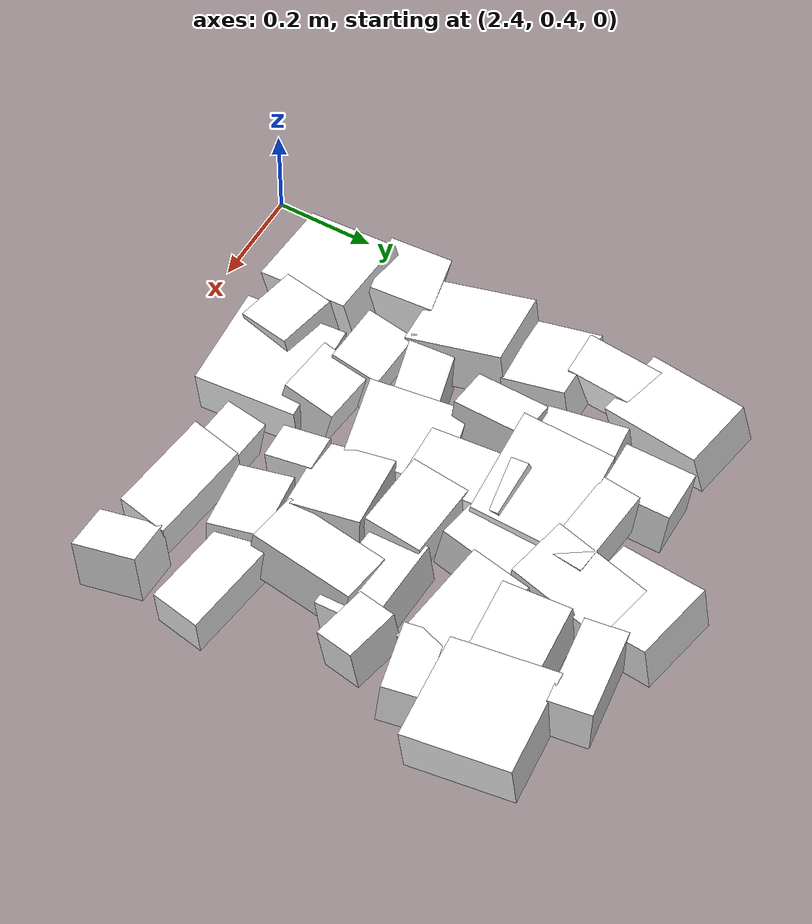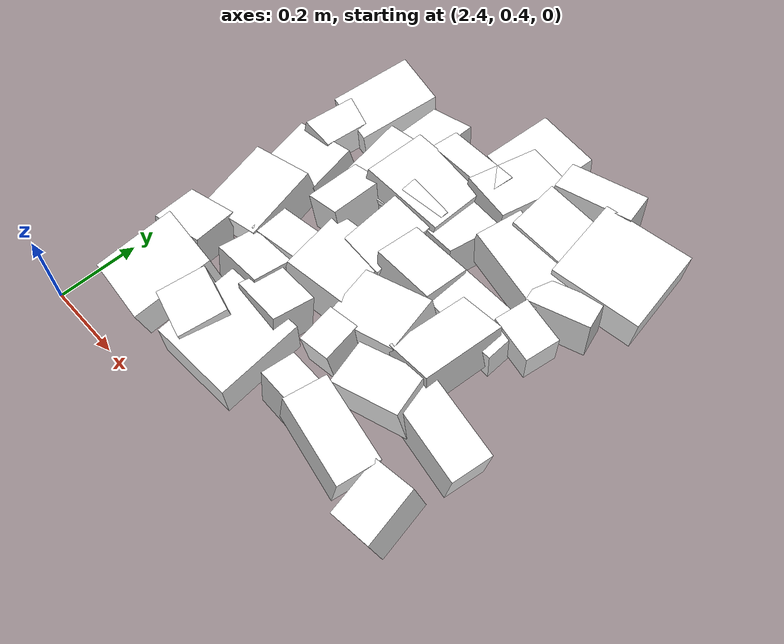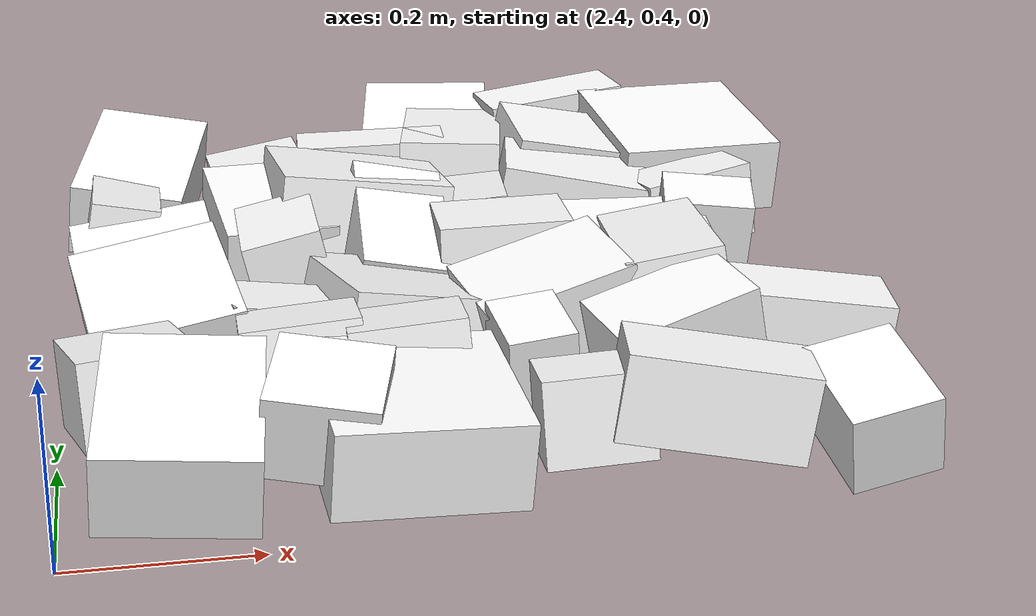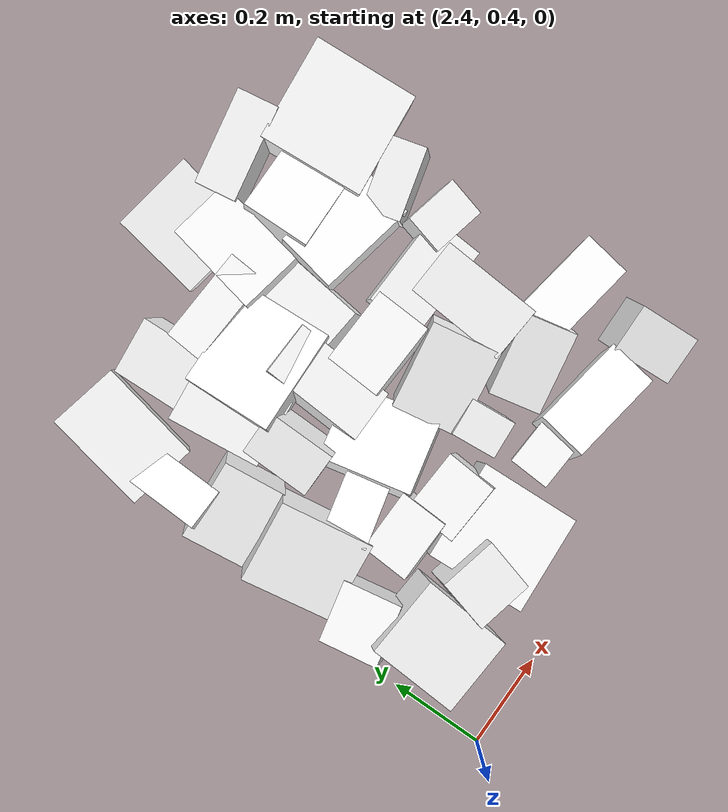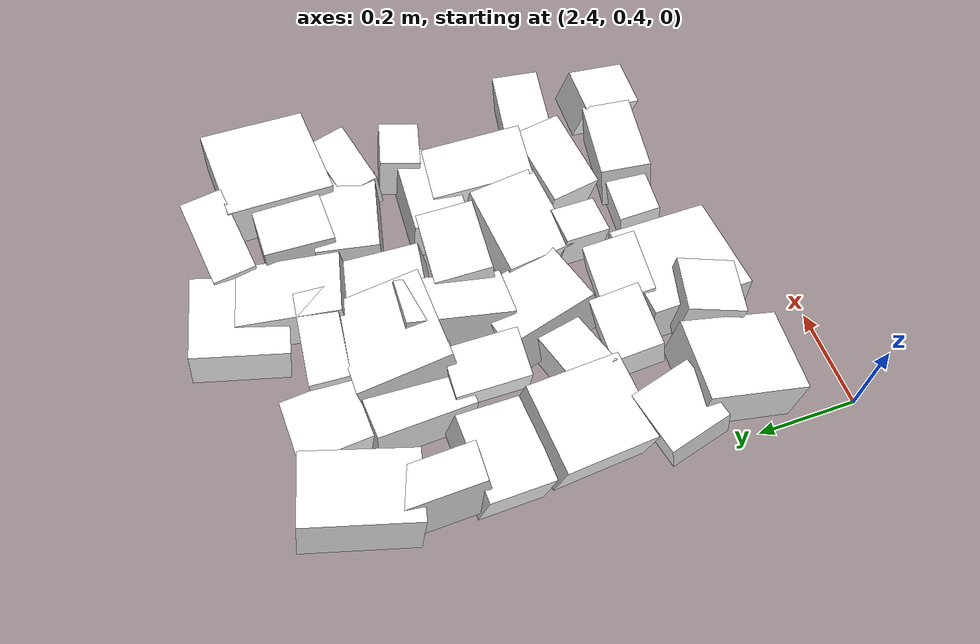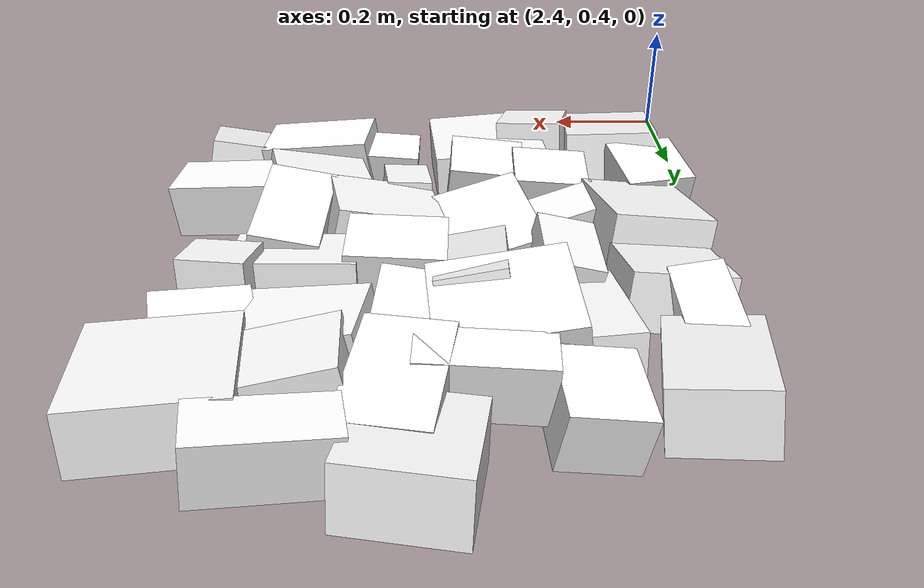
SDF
<sdf version="1.7">
 <world name="default">
  <include><uri>model://sun</uri></include>
  <model name="static_environment">
   <static>true</static>
   <link name="region_410">
    <pose>2.5264982627403807 0.5967376232046375 0.03349788162178775 0.21216534981599583 0.05971173338387331 -0.08870713364559307</pose>
    <collision name="region_410_collision">
     <geometry><box><size>0.1706078242711454 0.20436977434464226 0.1</size></box></geometry>
     <surface><friction><ode><mu>1.0</mu><mu2>1.0</mu2></ode></friction></surface>
    </collision>
    <visual name="region_410_visual">
     <geometry><box><size>0.1706078242711454 0.20436977434464226 0.1</size></box></geometry>
     <material><ambient>1.0 1.0 1.0 1.0</ambient><diffuse>1.0 1.0 1.0 1.0</diffuse></material>
    </visual>
   </link>
   <link name="region_411">
    <pose>2.677445045424345 0.5943575005775785 0.04732779111814016 0.1785952794159718 0.0944638330162288 -0.2483560156238302</pose>
    <collision name="region_411_collision">
     <geometry><box><size>0.12292144664003718 0.11871850275099793 0.1</size></box></geometry>
     <surface><friction><ode><mu>1.0</mu><mu2>1.0</mu2></ode></friction></surface>
    </collision>
    <visual name="region_411_visual">
     <geometry><box><size>0.12292144664003718 0.11871850275099793 0.1</size></box></geometry>
     <material><ambient>1.0 1.0 1.0 1.0</ambient><diffuse>1.0 1.0 1.0 1.0</diffuse></material>
    </visual>
   </link>
   <link name="region_412">
    <pose>2.770354561352111 0.6085755689061507 0.01926084901215371 0.04787094714345319 0.05540352775220464 0.04980959419866887</pose>
    <collision name="region_412_collision">
     <geometry><box><size>0.2100155249485474 0.2129797306443485 0.1</size></box></geometry>
     <surface><friction><ode><mu>1.0</mu><mu2>1.0</mu2></ode></friction></surface>
    </collision>
    <visual name="region_412_visual">
     <geometry><box><size>0.2100155249485474 0.2129797306443485 0.1</size></box></geometry>
     <material><ambient>1.0 1.0 1.0 1.0</ambient><diffuse>1.0 1.0 1.0 1.0</diffuse></material>
    </visual>
   </link>
   <link name="region_413">
    <pose>2.9680440540529336 0.6246860430079991 0.009733731452126854 -0.14469618057355804 -0.061279608819677645 -0.04857639491366328</pose>
    <collision name="region_413_collision">
     <geometry><box><size>0.12184259952648774 0.0854810512144632 0.1</size></box></geometry>
     <surface><friction><ode><mu>1.0</mu><mu2>1.0</mu2></ode></friction></surface>
    </collision>
    <visual name="region_413_visual">
     <geometry><box><size>0.12184259952648774 0.0854810512144632 0.1</size></box></geometry>
     <material><ambient>1.0 1.0 1.0 1.0</ambient><diffuse>1.0 1.0 1.0 1.0</diffuse></material>
    </visual>
   </link>
   <link name="region_414">
    <pose>3.095140889649027 0.6088775504003556 0.025582147639666555 -0.08308375724269845 0.13923671692967232 -0.1822824327161946</pose>
    <collision name="region_414_collision">
     <geometry><box><size>0.20777665416491922 0.10532315150551087 0.1</size></box></geometry>
     <surface><friction><ode><mu>1.0</mu><mu2>1.0</mu2></ode></friction></surface>
    </collision>
    <visual name="region_414_visual">
     <geometry><box><size>0.20777665416491922 0.10532315150551087 0.1</size></box></geometry>
     <material><ambient>1.0 1.0 1.0 1.0</ambient><diffuse>1.0 1.0 1.0 1.0</diffuse></material>
    </visual>
   </link>
   <link name="region_415">
    <pose>3.267210667914866 0.5852284916356614 0.005474271066575942 0.21533800719094315 -0.1868063581127013 0.0525026951817818</pose>
    <collision name="region_415_collision">
     <geometry><box><size>0.10375661583833336 0.1353883721843947 0.1</size></box></geometry>
     <surface><friction><ode><mu>1.0</mu><mu2>1.0</mu2></ode></friction></surface>
    </collision>
    <visual name="region_415_visual">
     <geometry><box><size>0.10375661583833336 0.1353883721843947 0.1</size></box></geometry>
     <material><ambient>1.0 1.0 1.0 1.0</ambient><diffuse>1.0 1.0 1.0 1.0</diffuse></material>
    </visual>
   </link>
   <link name="region_430">
    <pose>2.476385479812782 0.7311687372045597 0.025962440238234685 -0.19368886047820688 -0.008037205267920233 0.21574418850218124</pose>
    <collision name="region_430_collision">
     <geometry><box><size>0.12956067281717265 0.12503417433243483 0.1</size></box></geometry>
     <surface><friction><ode><mu>1.0</mu><mu2>1.0</mu2></ode></friction></surface>
    </collision>
    <visual name="region_430_visual">
     <geometry><box><size>0.12956067281717265 0.12503417433243483 0.1</size></box></geometry>
     <material><ambient>1.0 1.0 1.0 1.0</ambient><diffuse>1.0 1.0 1.0 1.0</diffuse></material>
    </visual>
   </link>
   <link name="region_431">
    <pose>2.6683295224171664 0.7596441277194645 0.030671755726946134 -0.18805892253738415 -0.0742292266154223 -0.013450099195137066</pose>
    <collision name="region_431_collision">
     <geometry><box><size>0.134828279164239 0.10205879768003219 0.1</size></box></geometry>
     <surface><friction><ode><mu>1.0</mu><mu2>1.0</mu2></ode></friction></surface>
    </collision>
    <visual name="region_431_visual">
     <geometry><box><size>0.134828279164239 0.10205879768003219 0.1</size></box></geometry>
     <material><ambient>1.0 1.0 1.0 1.0</ambient><diffuse>1.0 1.0 1.0 1.0</diffuse></material>
    </visual>
   </link>
   <link name="region_432">
    <pose>2.7836128173711705 0.7285696886971609 0.03647125605842567 -0.18849419529501205 -0.09011101296383955 -0.05417018967351489</pose>
    <collision name="region_432_collision">
     <geometry><box><size>0.13175779509372743 0.10828854993342196 0.1</size></box></geometry>
     <surface><friction><ode><mu>1.0</mu><mu2>1.0</mu2></ode></friction></surface>
    </collision>
    <visual name="region_432_visual">
     <geometry><box><size>0.13175779509372743 0.10828854993342196 0.1</size></box></geometry>
     <material><ambient>1.0 1.0 1.0 1.0</ambient><diffuse>1.0 1.0 1.0 1.0</diffuse></material>
    </visual>
   </link>
   <link name="region_433">
    <pose>2.930238940373016 0.7662187323337086 0.011959927052116981 0.12358504361697314 -0.07625290767795234 0.08060668410004262</pose>
    <collision name="region_433_collision">
     <geometry><box><size>0.08069118291779179 0.09825169303578776 0.1</size></box></geometry>
     <surface><friction><ode><mu>1.0</mu><mu2>1.0</mu2></ode></friction></surface>
    </collision>
    <visual name="region_433_visual">
     <geometry><box><size>0.08069118291779179 0.09825169303578776 0.1</size></box></geometry>
     <material><ambient>1.0 1.0 1.0 1.0</ambient><diffuse>1.0 1.0 1.0 1.0</diffuse></material>
    </visual>
   </link>
   <link name="region_434">
    <pose>3.0952584862004944 0.7605926109329969 0.030267264312795385 0.05434025327083025 -0.23025828911216734 0.20271797738747932</pose>
    <collision name="region_434_collision">
     <geometry><box><size>0.17318309997485784 0.10994639143384492 0.1</size></box></geometry>
     <surface><friction><ode><mu>1.0</mu><mu2>1.0</mu2></ode></friction></surface>
    </collision>
    <visual name="region_434_visual">
     <geometry><box><size>0.17318309997485784 0.10994639143384492 0.1</size></box></geometry>
     <material><ambient>1.0 1.0 1.0 1.0</ambient><diffuse>1.0 1.0 1.0 1.0</diffuse></material>
    </visual>
   </link>
   <link name="region_435">
    <pose>3.2432742116954474 0.7744580756489334 0.022606577508670928 -0.03335343160421389 0.10480613468346567 -0.1695489310743737</pose>
    <collision name="region_435_collision">
     <geometry><box><size>0.20835845713492265 0.10180219240691474 0.1</size></box></geometry>
     <surface><friction><ode><mu>1.0</mu><mu2>1.0</mu2></ode></friction></surface>
    </collision>
    <visual name="region_435_visual">
     <geometry><box><size>0.20835845713492265 0.10180219240691474 0.1</size></box></geometry>
     <material><ambient>1.0 1.0 1.0 1.0</ambient><diffuse>1.0 1.0 1.0 1.0</diffuse></material>
    </visual>
   </link>
   <link name="region_450">
    <pose>2.518960501932802 0.9036217532314061 0.02798448186844531 0.17900631935587558 -0.14723269115528503 0.10787045830242953</pose>
    <collision name="region_450_collision">
     <geometry><box><size>0.17586759001589866 0.19882283950283314 0.1</size></box></geometry>
     <surface><friction><ode><mu>1.0</mu><mu2>1.0</mu2></ode></friction></surface>
    </collision>
    <visual name="region_450_visual">
     <geometry><box><size>0.17586759001589866 0.19882283950283314 0.1</size></box></geometry>
     <material><ambient>1.0 1.0 1.0 1.0</ambient><diffuse>1.0 1.0 1.0 1.0</diffuse></material>
    </visual>
   </link>
   <link name="region_451">
    <pose>2.67092032971365 0.8775133360855353 0.002685717633342183 -0.01468467100861881 0.21937532283309652 0.22376915592995977</pose>
    <collision name="region_451_collision">
     <geometry><box><size>0.19738073139330983 0.09289147850770733 0.1</size></box></geometry>
     <surface><friction><ode><mu>1.0</mu><mu2>1.0</mu2></ode></friction></surface>
    </collision>
    <visual name="region_451_visual">
     <geometry><box><size>0.19738073139330983 0.09289147850770733 0.1</size></box></geometry>
     <material><ambient>1.0 1.0 1.0 1.0</ambient><diffuse>1.0 1.0 1.0 1.0</diffuse></material>
    </visual>
   </link>
   <link name="region_452">
    <pose>2.7850752742954175 0.9084678939354055 0.008289017887861062 -0.12333865203501837 0.21567775039032122 0.19866580151415425</pose>
    <collision name="region_452_collision">
     <geometry><box><size>0.16301595016087692 0.19697033880860118 0.1</size></box></geometry>
     <surface><friction><ode><mu>1.0</mu><mu2>1.0</mu2></ode></friction></surface>
    </collision>
    <visual name="region_452_visual">
     <geometry><box><size>0.16301595016087692 0.19697033880860118 0.1</size></box></geometry>
     <material><ambient>1.0 1.0 1.0 1.0</ambient><diffuse>1.0 1.0 1.0 1.0</diffuse></material>
    </visual>
   </link>
   <link name="region_453">
    <pose>2.9728330181096663 0.880241928223291 0.025393386301229493 0.049590323640137546 -0.23137801791927143 0.1577691326943617</pose>
    <collision name="region_453_collision">
     <geometry><box><size>0.18643594893411278 0.1460255045102985 0.1</size></box></geometry>
     <surface><friction><ode><mu>1.0</mu><mu2>1.0</mu2></ode></friction></surface>
    </collision>
    <visual name="region_453_visual">
     <geometry><box><size>0.18643594893411278 0.1460255045102985 0.1</size></box></geometry>
     <material><ambient>1.0 1.0 1.0 1.0</ambient><diffuse>1.0 1.0 1.0 1.0</diffuse></material>
    </visual>
   </link>
   <link name="region_454">
    <pose>3.1259824744794438 0.9172690502704679 0.041345515581136416 -0.09846852410530516 -0.1707248822704766 -0.06677514521933614</pose>
    <collision name="region_454_collision">
     <geometry><box><size>0.11723854043931331 0.21379516396226508 0.1</size></box></geometry>
     <surface><friction><ode><mu>1.0</mu><mu2>1.0</mu2></ode></friction></surface>
    </collision>
    <visual name="region_454_visual">
     <geometry><box><size>0.11723854043931331 0.21379516396226508 0.1</size></box></geometry>
     <material><ambient>1.0 1.0 1.0 1.0</ambient><diffuse>1.0 1.0 1.0 1.0</diffuse></material>
    </visual>
   </link>
   <link name="region_470">
    <pose>2.5086676997738477 1.0756493582404818 0.011339527356987561 0.19851755597599008 -0.12249757079299978 0.06091801628416055</pose>
    <collision name="region_470_collision">
     <geometry><box><size>0.17199956367881825 0.13466124031310217 0.1</size></box></geometry>
     <surface><friction><ode><mu>1.0</mu><mu2>1.0</mu2></ode></friction></surface>
    </collision>
    <visual name="region_470_visual">
     <geometry><box><size>0.17199956367881825 0.13466124031310217 0.1</size></box></geometry>
     <material><ambient>1.0 1.0 1.0 1.0</ambient><diffuse>1.0 1.0 1.0 1.0</diffuse></material>
    </visual>
   </link>
   <link name="region_471">
    <pose>2.6768662697949965 1.047043494849821 0.03642183200974957 -0.011167872114045019 -0.22162480456825373 -0.009796874194892058</pose>
    <collision name="region_471_collision">
     <geometry><box><size>0.09718251830032122 0.14906649547310374 0.1</size></box></geometry>
     <surface><friction><ode><mu>1.0</mu><mu2>1.0</mu2></ode></friction></surface>
    </collision>
    <visual name="region_471_visual">
     <geometry><box><size>0.09718251830032122 0.14906649547310374 0.1</size></box></geometry>
     <material><ambient>1.0 1.0 1.0 1.0</ambient><diffuse>1.0 1.0 1.0 1.0</diffuse></material>
    </visual>
   </link>
   <link name="region_472">
    <pose>2.817264220335275 1.0730547976616376 0.02893955183684023 0.23951214188447767 0.19850751868958688 -0.019008481146175926</pose>
    <collision name="region_472_collision">
     <geometry><box><size>0.11461537412358669 0.22075162058865685 0.1</size></box></geometry>
     <surface><friction><ode><mu>1.0</mu><mu2>1.0</mu2></ode></friction></surface>
    </collision>
    <visual name="region_472_visual">
     <geometry><box><size>0.11461537412358669 0.22075162058865685 0.1</size></box></geometry>
     <material><ambient>1.0 1.0 1.0 1.0</ambient><diffuse>1.0 1.0 1.0 1.0</diffuse></material>
    </visual>
   </link>
   <link name="region_473">
    <pose>2.9451690341348984 1.0228297597881912 0.036295745139574155 -0.07839194552425655 -0.030481082231647083 -0.051092367105398384</pose>
    <collision name="region_473_collision">
     <geometry><box><size>0.16425957500197325 0.11947550413600536 0.1</size></box></geometry>
     <surface><friction><ode><mu>1.0</mu><mu2>1.0</mu2></ode></friction></surface>
    </collision>
    <visual name="region_473_visual">
     <geometry><box><size>0.16425957500197325 0.11947550413600536 0.1</size></box></geometry>
     <material><ambient>1.0 1.0 1.0 1.0</ambient><diffuse>1.0 1.0 1.0 1.0</diffuse></material>
    </visual>
   </link>
   <link name="region_474">
    <pose>3.106683530822245 1.0331479269844162 0.015320731473872879 0.117204106528009 0.01192806371981936 -0.04050224781636941</pose>
    <collision name="region_474_collision">
     <geometry><box><size>0.2043672520689068 0.11664214615330043 0.1</size></box></geometry>
     <surface><friction><ode><mu>1.0</mu><mu2>1.0</mu2></ode></friction></surface>
    </collision>
    <visual name="region_474_visual">
     <geometry><box><size>0.2043672520689068 0.11664214615330043 0.1</size></box></geometry>
     <material><ambient>1.0 1.0 1.0 1.0</ambient><diffuse>1.0 1.0 1.0 1.0</diffuse></material>
    </visual>
   </link>
   <link name="region_475">
    <pose>3.221927171532795 1.0694551000408359 0.03434995556753628 0.1325342098807925 0.0589887690794354 -0.22159607160125444</pose>
    <collision name="region_475_collision">
     <geometry><box><size>0.11452556950313356 0.08471425222467681 0.1</size></box></geometry>
     <surface><friction><ode><mu>1.0</mu><mu2>1.0</mu2></ode></friction></surface>
    </collision>
    <visual name="region_475_visual">
     <geometry><box><size>0.11452556950313356 0.08471425222467681 0.1</size></box></geometry>
     <material><ambient>1.0 1.0 1.0 1.0</ambient><diffuse>1.0 1.0 1.0 1.0</diffuse></material>
    </visual>
   </link>
   <link name="region_490">
    <pose>2.477163960644809 1.2032705166650137 0.02703001538088152 -0.1133726761692857 0.18366987341869911 -0.029315060678144933</pose>
    <collision name="region_490_collision">
     <geometry><box><size>0.08632195482257947 0.187184255299073 0.1</size></box></geometry>
     <surface><friction><ode><mu>1.0</mu><mu2>1.0</mu2></ode></friction></surface>
    </collision>
    <visual name="region_490_visual">
     <geometry><box><size>0.08632195482257947 0.187184255299073 0.1</size></box></geometry>
     <material><ambient>1.0 1.0 1.0 1.0</ambient><diffuse>1.0 1.0 1.0 1.0</diffuse></material>
    </visual>
   </link>
   <link name="region_491">
    <pose>2.6683574263803616 1.1946190590628667 0.01330002077187898 0.11835200727548906 0.014643537939566242 0.10182114266202763</pose>
    <collision name="region_491_collision">
     <geometry><box><size>0.1439511231999984 0.197233642775333 0.1</size></box></geometry>
     <surface><friction><ode><mu>1.0</mu><mu2>1.0</mu2></ode></friction></surface>
    </collision>
    <visual name="region_491_visual">
     <geometry><box><size>0.1439511231999984 0.197233642775333 0.1</size></box></geometry>
     <material><ambient>1.0 1.0 1.0 1.0</ambient><diffuse>1.0 1.0 1.0 1.0</diffuse></material>
    </visual>
   </link>
   <link name="region_492">
    <pose>2.780943488508835 1.1976850897654627 0.04372559915359156 -0.12133246685449334 0.14066915408774605 0.036720320530981676</pose>
    <collision name="region_492_collision">
     <geometry><box><size>0.2196333035259809 0.18890119516313156 0.1</size></box></geometry>
     <surface><friction><ode><mu>1.0</mu><mu2>1.0</mu2></ode></friction></surface>
    </collision>
    <visual name="region_492_visual">
     <geometry><box><size>0.2196333035259809 0.18890119516313156 0.1</size></box></geometry>
     <material><ambient>1.0 1.0 1.0 1.0</ambient><diffuse>1.0 1.0 1.0 1.0</diffuse></material>
    </visual>
   </link>
   <link name="region_493">
    <pose>2.9252654385185872 1.1853645423862034 0.01149610379319918 -0.13503114956618806 -0.11308812755218606 -0.11115714999720433</pose>
    <collision name="region_493_collision">
     <geometry><box><size>0.11733487796048803 0.1829816673202897 0.1</size></box></geometry>
     <surface><friction><ode><mu>1.0</mu><mu2>1.0</mu2></ode></friction></surface>
    </collision>
    <visual name="region_493_visual">
     <geometry><box><size>0.11733487796048803 0.1829816673202897 0.1</size></box></geometry>
     <material><ambient>1.0 1.0 1.0 1.0</ambient><diffuse>1.0 1.0 1.0 1.0</diffuse></material>
    </visual>
   </link>
   <link name="region_494">
    <pose>3.0900226297202567 1.2140487356908318 0.02310624939546383 -0.003323054464851094 0.16492755509736245 -0.1822464914973001</pose>
    <collision name="region_494_collision">
     <geometry><box><size>0.2195785116419252 0.12880104693962424 0.1</size></box></geometry>
     <surface><friction><ode><mu>1.0</mu><mu2>1.0</mu2></ode></friction></surface>
    </collision>
    <visual name="region_494_visual">
     <geometry><box><size>0.2195785116419252 0.12880104693962424 0.1</size></box></geometry>
     <material><ambient>1.0 1.0 1.0 1.0</ambient><diffuse>1.0 1.0 1.0 1.0</diffuse></material>
    </visual>
   </link>
   <link name="region_495">
    <pose>3.235215594164381 1.1843766137070002 0.018412711536911135 -0.08489723056268433 -0.09251317923114566 0.24885614814009244</pose>
    <collision name="region_495_collision">
     <geometry><box><size>0.15284155814154704 0.08084759896191056 0.1</size></box></geometry>
     <surface><friction><ode><mu>1.0</mu><mu2>1.0</mu2></ode></friction></surface>
    </collision>
    <visual name="region_495_visual">
     <geometry><box><size>0.15284155814154704 0.08084759896191056 0.1</size></box></geometry>
     <material><ambient>1.0 1.0 1.0 1.0</ambient><diffuse>1.0 1.0 1.0 1.0</diffuse></material>
    </visual>
   </link>
   <link name="region_510">
    <pose>2.5045976044100984 1.3392393125400326 0.033970611509386864 0.17180837962458978 0.12766514510208288 -0.19940765573687647</pose>
    <collision name="region_510_collision">
     <geometry><box><size>0.14625997580785893 0.21992574860243916 0.1</size></box></geometry>
     <surface><friction><ode><mu>1.0</mu><mu2>1.0</mu2></ode></friction></surface>
    </collision>
    <visual name="region_510_visual">
     <geometry><box><size>0.14625997580785893 0.21992574860243916 0.1</size></box></geometry>
     <material><ambient>1.0 1.0 1.0 1.0</ambient><diffuse>1.0 1.0 1.0 1.0</diffuse></material>
    </visual>
   </link>
   <link name="region_511">
    <pose>2.6729220717103734 1.3237523640246636 0.00868604106698821 -0.07280291376155806 -0.151357109972319 0.06067094774678217</pose>
    <collision name="region_511_collision">
     <geometry><box><size>0.12431086424980137 0.2076339530002352 0.1</size></box></geometry>
     <surface><friction><ode><mu>1.0</mu><mu2>1.0</mu2></ode></friction></surface>
    </collision>
    <visual name="region_511_visual">
     <geometry><box><size>0.12431086424980137 0.2076339530002352 0.1</size></box></geometry>
     <material><ambient>1.0 1.0 1.0 1.0</ambient><diffuse>1.0 1.0 1.0 1.0</diffuse></material>
    </visual>
   </link>
   <link name="region_512">
    <pose>2.821755488206315 1.323852961281474 0.03899692015208958 -0.046615869050720904 -0.02738273887448761 -0.07213553415694479</pose>
    <collision name="region_512_collision">
     <geometry><box><size>0.20036749075341012 0.07985500044898025 0.1</size></box></geometry>
     <surface><friction><ode><mu>1.0</mu><mu2>1.0</mu2></ode></friction></surface>
    </collision>
    <visual name="region_512_visual">
     <geometry><box><size>0.20036749075341012 0.07985500044898025 0.1</size></box></geometry>
     <material><ambient>1.0 1.0 1.0 1.0</ambient><diffuse>1.0 1.0 1.0 1.0</diffuse></material>
    </visual>
   </link>
   <link name="region_513">
    <pose>2.9396967693233576 1.3605920879019573 0.03643438861134513 -0.08976369764080722 0.010218295815222933 -0.19505316577957993</pose>
    <collision name="region_513_collision">
     <geometry><box><size>0.1346481891214402 0.2071371489773793 0.1</size></box></geometry>
     <surface><friction><ode><mu>1.0</mu><mu2>1.0</mu2></ode></friction></surface>
    </collision>
    <visual name="region_513_visual">
     <geometry><box><size>0.1346481891214402 0.2071371489773793 0.1</size></box></geometry>
     <material><ambient>1.0 1.0 1.0 1.0</ambient><diffuse>1.0 1.0 1.0 1.0</diffuse></material>
    </visual>
   </link>
   <link name="region_514">
    <pose>3.102057517699933 1.3279663456950292 0.035957479024783766 0.07465130409613385 0.20141453226591394 0.04433593767546118</pose>
    <collision name="region_514_collision">
     <geometry><box><size>0.1947871451714058 0.14178322460728265 0.1</size></box></geometry>
     <surface><friction><ode><mu>1.0</mu><mu2>1.0</mu2></ode></friction></surface>
    </collision>
    <visual name="region_514_visual">
     <geometry><box><size>0.1947871451714058 0.14178322460728265 0.1</size></box></geometry>
     <material><ambient>1.0 1.0 1.0 1.0</ambient><diffuse>1.0 1.0 1.0 1.0</diffuse></material>
    </visual>
   </link>
   <link name="region_515">
    <pose>3.2595902971924735 1.3471755583602127 0.040968683434390515 0.10107900919823626 0.01922453332087143 0.09366918017167242</pose>
    <collision name="region_515_collision">
     <geometry><box><size>0.22254151582764767 0.22039844042800075 0.1</size></box></geometry>
     <surface><friction><ode><mu>1.0</mu><mu2>1.0</mu2></ode></friction></surface>
    </collision>
    <visual name="region_515_visual">
     <geometry><box><size>0.22254151582764767 0.22039844042800075 0.1</size></box></geometry>
     <material><ambient>1.0 1.0 1.0 1.0</ambient><diffuse>1.0 1.0 1.0 1.0</diffuse></material>
    </visual>
   </link>
   <link name="region_533">
    <pose>2.9204354475503562 1.4744683742013733 0.025448350793840814 0.170214213032232 -0.007524654286323484 -0.17648855066087743</pose>
    <collision name="region_533_collision">
     <geometry><box><size>0.17534049738056207 0.18718979881708145 0.1</size></box></geometry>
     <surface><friction><ode><mu>1.0</mu><mu2>1.0</mu2></ode></friction></surface>
    </collision>
    <visual name="region_533_visual">
     <geometry><box><size>0.17534049738056207 0.18718979881708145 0.1</size></box></geometry>
     <material><ambient>1.0 1.0 1.0 1.0</ambient><diffuse>1.0 1.0 1.0 1.0</diffuse></material>
    </visual>
   </link>
   <link name="region_534">
    <pose>3.1050137600591885 1.4715982375510537 0.048055060772423226 -0.009833687898736843 -0.0800342305586077 0.15850925816417005</pose>
    <collision name="region_534_collision">
     <geometry><box><size>0.19889755639854195 0.08673962148626173 0.1</size></box></geometry>
     <surface><friction><ode><mu>1.0</mu><mu2>1.0</mu2></ode></friction></surface>
    </collision>
    <visual name="region_534_visual">
     <geometry><box><size>0.19889755639854195 0.08673962148626173 0.1</size></box></geometry>
     <material><ambient>1.0 1.0 1.0 1.0</ambient><diffuse>1.0 1.0 1.0 1.0</diffuse></material>
    </visual>
   </link>
  </model>
 </world>
</sdf>
